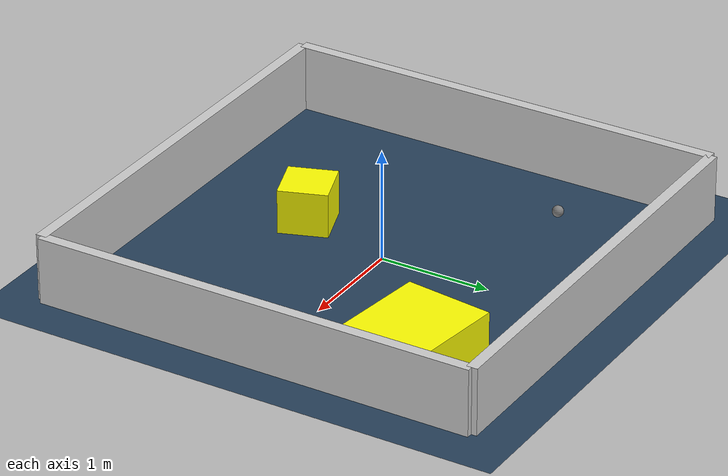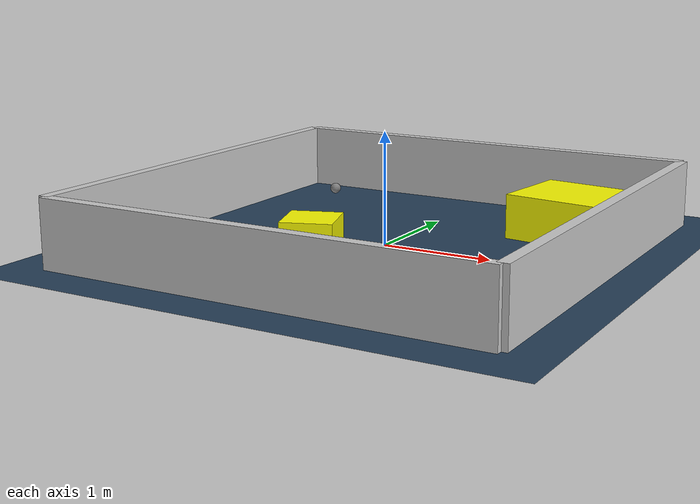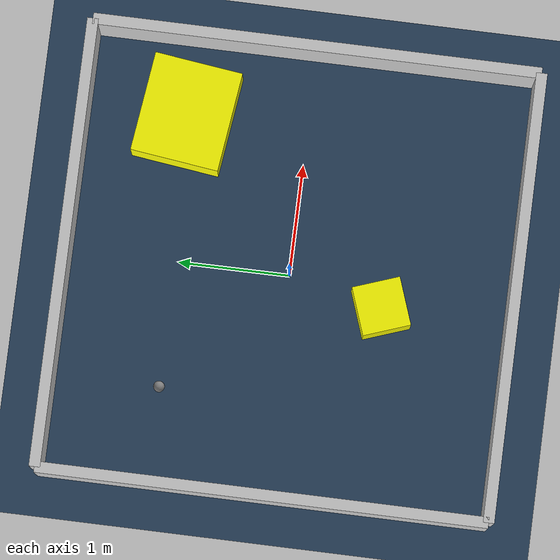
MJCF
<?xml version="1.0" ?>
<mujoco model="generated_environment">
  <option timestep="0.01" integrator="RK4" cone="elliptic"/>
  <default>
    <geom density="1"/>
  </default>
  <asset>
    <texture builtin="gradient" height="3072" rgb1="0.3 0.5 0.7" rgb2="0 0 0" type="skybox" width="512"/>
    <texture builtin="checker" height="300" mark="edge" markrgb="0.8 0.8 0.8" name="groundplane" rgb1="0.2 0.3 0.4" rgb2="0.1 0.2 0.3" type="2d" width="300"/>
    <material name="groundplane" reflectance="0.2" texrepeat="5 5" texture="groundplane" texuniform="true"/>
    <material name="robot" rgba="0.0 1.0 0.0 1"/>
  </asset>
  <worldbody>
    <light dir="0 0 -1" directional="true" pos="0 0 1.5"/>
    <geom condim="4" friction="1.0 0.005 0.001" material="groundplane" name="floor" size="0 0 0.05" type="plane"/>
    <body name="walls">
      <geom name="wall_1" condim="4" pos="-2.0 0.0 0.3" rgba="0.800000011920929 0.800000011920929 0.800000011920929 1.0" size="0.05 2.0 0.3" type="box"/>
      <geom name="wall_2" condim="4" pos="2.0 0.0 0.3" rgba="0.800000011920929 0.800000011920929 0.800000011920929 1.0" size="0.05 2.0 0.3" type="box"/>
      <geom name="wall_3" condim="4" pos="0.0 -2.0 0.3" rgba="0.800000011920929 0.800000011920929 0.800000011920929 1.0" size="2.0 0.05 0.3" type="box"/>
      <geom name="wall_4" condim="4" pos="0.0 2.0 0.3" rgba="0.800000011920929 0.800000011920929 0.800000011920929 1.0" size="2.0 0.05 0.3" type="box"/>
    </body>
    <body name="robot">
      <joint name="joint_x" type="slide" pos="0 0 0" axis="1 0 0"/>
      <joint name="joint_y" type="slide" pos="0 0 0" axis="0 1 0"/>
      <geom name="robot" type="sphere" pos="-1.1405452073806024 1.0230485666111884 0.2" size="0.05" mass="5." friction="1.0 0.005 0.0001" condim="4"/>
      <site name="sensor_ball"/>
    </body>
    <body name="obstacle_1_movable">
      <geom name="obstacle_1_movable" condim="4" pos="-0.20733166478917453 -0.8439136624894275 0.2" euler="0 0 19.662004599818758" friction="1.0 0.005 0.001" rgba="1 1 0 1" size="0.22011650608605812 0.21757932990490195 0.2" type="box" mass="0.1"/>
      <joint type="free"/>
    </body>
    <body name="obstacle_2_movable">
      <geom name="obstacle_2_movable" condim="4" pos="1.3031509639804413 1.0817473806643343 0.2" euler="0 0 82.8075047822695" friction="1.0 0.005 0.001" rgba="1 1 0 1" size="0.3985810024397821 0.4502649532313084 0.2" type="box" mass="0.1"/>
      <joint type="free"/>
    </body>
  </worldbody>
  <actuator>
    <motor name="actuator_x" joint="joint_x" gear="1" ctrlrange="-1 1"/>
    <motor name="actuator_y" joint="joint_y" gear="1" ctrlrange="-1 1"/>
  </actuator>
</mujoco>
